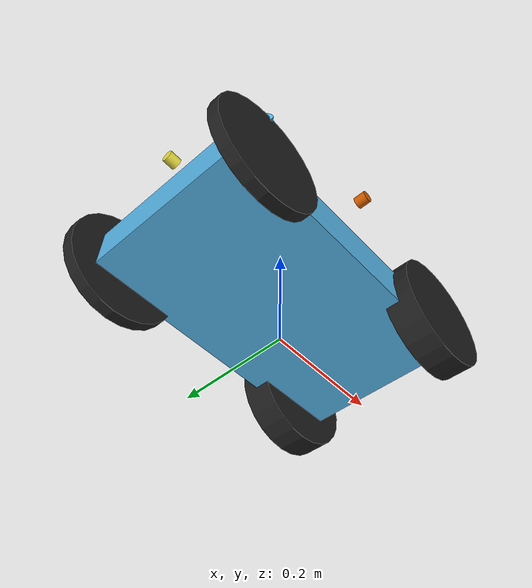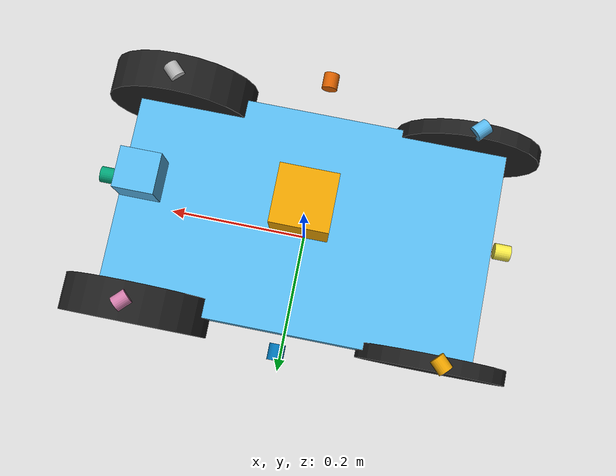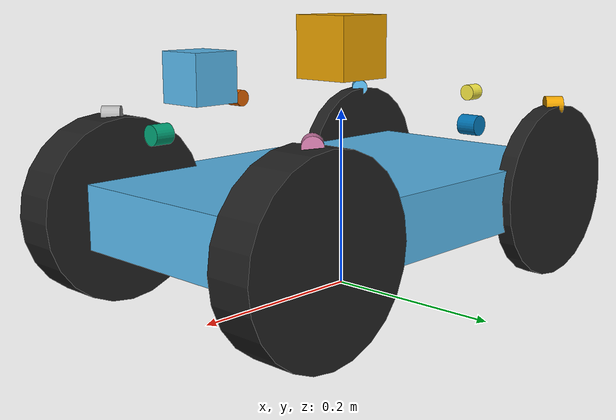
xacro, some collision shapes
<robot name="simple4wheeler" xmlns:xacro="http://www.ros.org/wiki/xacro">
    <xacro:property name="pi" value="3.1415926535897931" />
    <xacro:property name="wheel_radius" value="0.1" />
    <xacro:property name="wheel_width" value="0.04" />
    <xacro:property name="chassis_length" value="0.5" />
    <xacro:property name="chassis_width" value="0.3" />
    <xacro:property name="chassis_height" value="0.07" />

    <!-- Base Links -->
    <link name="map"/>

    <link name="base_link">
        <visual>
            <geometry>
                <box size="${chassis_length} ${chassis_width} ${chassis_height}"/>
            </geometry>
        </visual>
        <collision>
            <geometry>
                <box size="${chassis_length} ${chassis_width} ${chassis_height}"/>
            </geometry>
        </collision>
        <inertial>
            <mass value="3"/>
            <inertia ixx="0.03954" ixy="0" ixz="0" iyy="0.10620" iyz="0" izz="0.10620"/>
        </inertial>
    </link>

    <joint name="base_joint" type="fixed">
        <parent link="map"/>
        <child link="base_link"/>
        <origin xyz="0 0 0.1" rpy="0 0 0"/>
    </joint>

    <!-- Wheels -->
    <xacro:macro name="wheel" params="prefix x y">
    <link name="${prefix}_wheel">
        <visual>
        <origin xyz="0 0 0" rpy="1.5708 0 0"/> <!-- ← Rotate 90° around X -->
        <geometry>
            <cylinder length="0.02" radius="0.1"/>
        </geometry>
        <material name="black"/>
        </visual>
        <collision>
        <origin xyz="0 0 0" rpy="1.5708 0 0"/> <!-- ← Same rotation here -->
        <geometry>
            <cylinder length="0.02" radius="0.1"/>
        </geometry>
        </collision>
        <inertial>
        <mass value="0.5"/>
        <origin xyz="0 0 0" rpy="1.5708 0 0"/> <!-- ← Same here -->
        <inertia ixx="0.001" ixy="0.0" ixz="0.0"
                iyy="0.001" iyz="0.0"
                izz="0.001"/>
        </inertial>
    </link>

    <joint name="${prefix}_wheel_joint" type="continuous">
        <parent link="base_link"/>
        <child link="${prefix}_wheel"/>
        <origin xyz="${x} ${y} 0" rpy="0 0 0"/>
        <axis xyz="0 1 0"/> <!-- Correct rolling axis -->
    </joint>
    </xacro:macro>

    <!-- Front steering wheels -->
<xacro:macro name="steering_wheel" params="prefix x y">
  <!-- Steering Pivot -->
  <link name="${prefix}_steering">
    <visual>
      <origin xyz="0 0 0" rpy="0 0 0"/>
      <geometry>
        <sphere radius="0.01"/>
      </geometry>
      <material name="gray"/>
    </visual>
    <inertial>
      <mass value="0.1"/>
      <origin xyz="0 0 0"/>
      <inertia ixx="0.0001" ixy="0" ixz="0" iyy="0.0001" iyz="0" izz="0.0001"/>
    </inertial>
  </link>

  <!-- Wheel Link (rotated cylinder) -->
  <link name="${prefix}_wheel">
    <visual>
      <origin xyz="0 0 0" rpy="1.5708 0 0"/> <!-- Rotate wheel -->
      <geometry>
        <cylinder length="0.05" radius="0.1"/>
      </geometry>
      <material name="black"/>
    </visual>
    <inertial>
      <mass value="0.5"/>
      <origin xyz="0 0 0"/>
      <inertia ixx="0.001" ixy="0" ixz="0" iyy="0.001" iyz="0" izz="0.001"/>
    </inertial>
  </link>

  <!-- Joint to steer wheel (Z axis) -->
  <joint name="${prefix}_steering_joint" type="continuous">
    <parent link="base_link"/>
    <child link="${prefix}_steering"/>
    <origin xyz="${x} ${y} 0" rpy="0 0 0"/>
    <axis xyz="0 0 1"/>
  </joint>

  <!-- Joint to spin the wheel (Y axis relative to steering) -->
  <joint name="${prefix}_wheel_joint" type="continuous">
    <parent link="${prefix}_steering"/>
    <child link="${prefix}_wheel"/>
    <origin xyz="0 0 0" rpy="0 0 0"/>
    <axis xyz="0 1 0"/>
  </joint>
</xacro:macro>

    <!-- Create wheels -->
    <xacro:wheel prefix="left_back" x="-0.2" y="0.15"/>
    <xacro:wheel prefix="right_back" x="-0.2" y="-0.15"/>
    <xacro:steering_wheel prefix="left_front" x="0.2" y="0.15"/>
    <xacro:steering_wheel prefix="right_front" x="0.2" y="-0.15"/>

    <!-- Lidar -->
    <link name="lidar">
        <visual>
            <geometry>
                <mesh filename="package://simple4wheeler/model/rplidar_a2_simple.stl"/>
            </geometry>
        </visual>
        <collision>
            <geometry>
                <box size="0.07 0.07 0.07"/>
            </geometry>
        </collision>
        <inertial>
            <mass value="0.1"/>
            <inertia ixx="0.00001" ixy="0" ixz="0" iyy="0.00001" iyz="0" izz="0.00001"/>
        </inertial>
    </link>

    <joint name="lidar_joint" type="fixed">
        <parent link="base_link"/>
        <child link="lidar"/>
        <origin xyz="0 0 0.17" rpy="0 0 0"/>
    </joint>

    <gazebo reference="lidar">
        <sensor type="ray" name="lidar_sensor">
            <pose>0 0 0 0 0 0</pose>
            <visualize>true</visualize>
            <update_rate>10</update_rate>
            <ray>
                <scan>
                    <horizontal>
                        <samples>400</samples>
                        <resolution>1</resolution>
                        <min_angle>-${pi}</min_angle>
                        <max_angle>${pi}</max_angle>
                    </horizontal>
                    <vertical>
                        <samples>1</samples>
                        <resolution>1</resolution>
                        <min_angle>-0.05</min_angle>
                        <max_angle>0.05</max_angle>
                    </vertical>
                </scan>
                <range>
                    <min>0.15</min>
                    <max>12.0</max>
                    <resolution>0.01</resolution>
                </range>
            </ray>
            <plugin name="lidar_controller" filename="libgazebo_ros_laser.so">
                <topicName>/scan</topicName>
                <frameName>lidar</frameName>
            </plugin>
        </sensor>
    </gazebo>

    <!-- Camera -->
    <link name="camera">
        <visual>
            <geometry>
                <box size="0.05 0.05 0.05"/>
            </geometry>
        </visual>
        <inertial>
            <mass value="0.1"/>
            <inertia ixx="0.00001" ixy="0" ixz="0" iyy="0.00001" iyz="0" izz="0.00001"/>
        </inertial>
    </link>

    <joint name="camera_joint" type="fixed">
        <parent link="base_link"/>
        <child link="camera"/>
        <origin xyz="0.2 0 0.15" rpy="0 0 0"/>
    </joint>

    <gazebo reference="camera">
        <sensor type="camera" name="camera_sensor">
            <update_rate>30</update_rate>
            <camera name="front_camera">
                <horizontal_fov>1.3962634</horizontal_fov>
                <image>
                    <width>640</width>
                    <height>480</height>
                    <format>R8G8B8</format>
                </image>
                <clip>
                    <near>0.1</near>
                    <far>100</far>
                </clip>
            </camera>
            <plugin name="camera_controller" filename="libgazebo_ros_camera.so">
                <alwaysOn>true</alwaysOn>
                <updateRate>0.0</updateRate>
                <cameraName>camera</cameraName>
                <imageTopicName>image_raw</imageTopicName>
                <cameraInfoTopicName>camera_info</cameraInfoTopicName>
                <frameName>camera</frameName>
                <hackBaseline>0.07</hackBaseline>
                <distortionK1>0.0</distortionK1>
                <distortionK2>0.0</distortionK2>
                <distortionK3>0.0</distortionK3>
                <distortionT1>0.0</distortionT1>
                <distortionT2>0.0</distortionT2>
            </plugin>
        </sensor>
    </gazebo>

    <!-- Ultrasonic Sensors -->
    <xacro:macro name="ultrasonic_sensor" params="name x y z yaw">
        <link name="${name}_ultrasonic">
            <visual>
                <geometry>
                    <cylinder radius="0.01" length="0.02"/>
                </geometry>
                <origin rpy="0 ${pi/2} 0" xyz="0 0 0"/>
            </visual>
        </link>

        <joint name="${name}_ultrasonic_joint" type="fixed">
            <parent link="base_link"/>
            <child link="${name}_ultrasonic"/>
            <origin xyz="${x} ${y} ${z}" rpy="0 0 ${yaw}"/>
        </joint>

        <gazebo reference="${name}_ultrasonic">
            <sensor type="ray" name="${name}_sensor">
                <pose>0 0 0 0 0 0</pose>
                <visualize>true</visualize>
                <update_rate>10</update_rate>
                <ray>
                    <scan>
                        <horizontal>
                            <samples>5</samples>
                            <resolution>1</resolution>
                            <min_angle>-0.1</min_angle>
                            <max_angle>0.1</max_angle>
                        </horizontal>
                        <vertical>
                            <samples>5</samples>
                            <resolution>1</resolution>
                            <min_angle>-0.1</min_angle>
                            <max_angle>0.1</max_angle>
                        </vertical>
                    </scan>
                    <range>
                        <min>0.02</min>
                        <max>4.0</max>
                        <resolution>0.01</resolution>
                    </range>
                </ray>
                <plugin name="${name}_controller" filename="libgazebo_ros_range.so">
                    <topicName>${name}/range</topicName>
                    <frameName>${name}_ultrasonic</frameName>
                    <radiation>ultrasound</radiation>
                    <fov>0.2</fov>
                    <minRange>0.02</minRange>
                    <maxRange>4.0</maxRange>
                </plugin>
            </sensor>
        </gazebo>
    </xacro:macro>

    <!-- Place ultrasonic sensors around the robot -->
    <xacro:ultrasonic_sensor name="front" x="0.25" y="0" z="0.1" yaw="0"/>
    <xacro:ultrasonic_sensor name="back" x="-0.25" y="0" z="0.1" yaw="${pi}"/>
    <xacro:ultrasonic_sensor name="left" x="0" y="0.175" z="0.1" yaw="${pi/2}"/>
    <xacro:ultrasonic_sensor name="right" x="0" y="-0.175" z="0.1" yaw="-${pi/2}"/>
    <xacro:ultrasonic_sensor name="front_left" x="0.2" y="0.15" z="0.1" yaw="${pi/4}"/>
    <xacro:ultrasonic_sensor name="front_right" x="0.2" y="-0.15" z="0.1" yaw="-${pi/4}"/>
    <xacro:ultrasonic_sensor name="back_left" x="-0.2" y="0.15" z="0.1" yaw="${3*pi/4}"/>
    <xacro:ultrasonic_sensor name="back_right" x="-0.2" y="-0.15" z="0.1" yaw="-${3*pi/4}"/>

    <!-- Gazebo Plugins -->
    <gazebo>
        <plugin name="skid_steer_drive_controller" filename="libgazebo_ros_skid_steer_drive.so">
            <updateRate>100</updateRate>
            <robotNamespace>/</robotNamespace>
            <leftFrontJoint>left_front_wheel_joint</leftFrontJoint>
            <rightFrontJoint>right_front_wheel_joint</rightFrontJoint>
            <leftRearJoint>left_back_wheel_joint</leftRearJoint>
            <rightRearJoint>right_back_wheel_joint</rightRearJoint>
            <wheelSeparation>0.3</wheelSeparation>
            <wheelDiameter>${2*wheel_radius}</wheelDiameter>
            <robotBaseFrame>base_link</robotBaseFrame>
            <torque>20</torque>
            <topicName>cmd_vel</topicName>
            <broadcastTF>true</broadcastTF>
            <odometryTopic>odom</odometryTopic>
            <odometryFrame>odom</odometryFrame>
        </plugin>

        <plugin name="gazebo_ros_control" filename="libgazebo_ros_control.so">
            <robotNamespace>/</robotNamespace>
        </plugin>
    </gazebo>
</robot>
